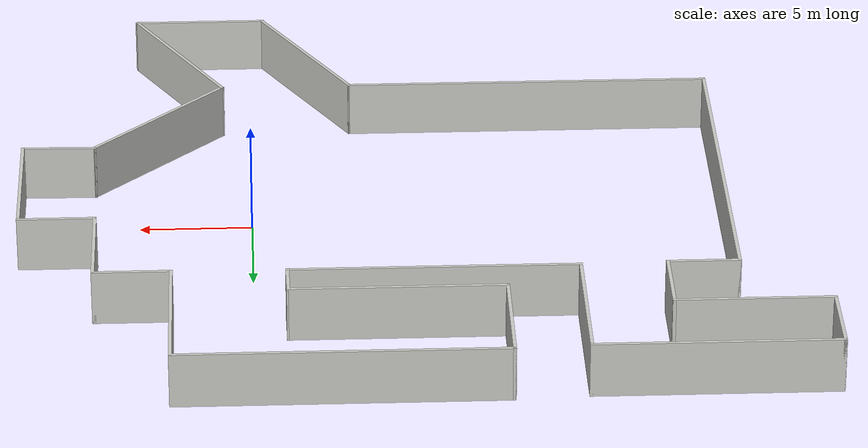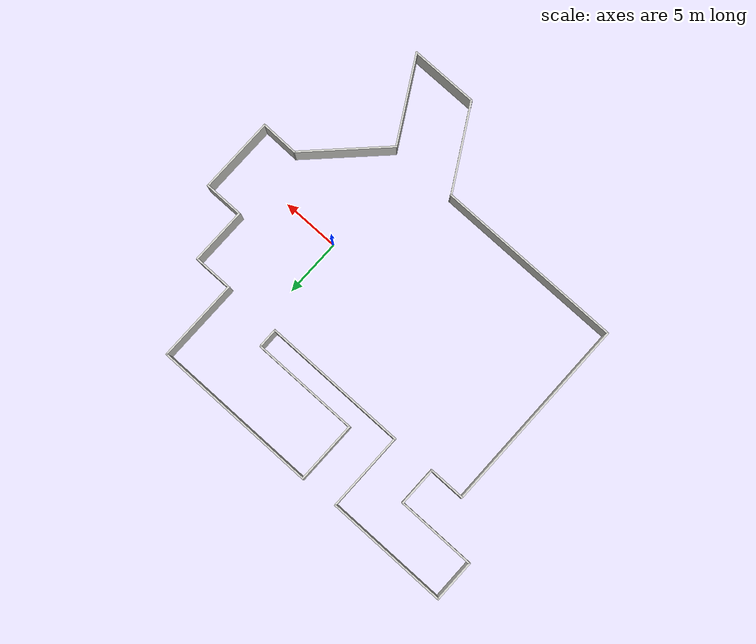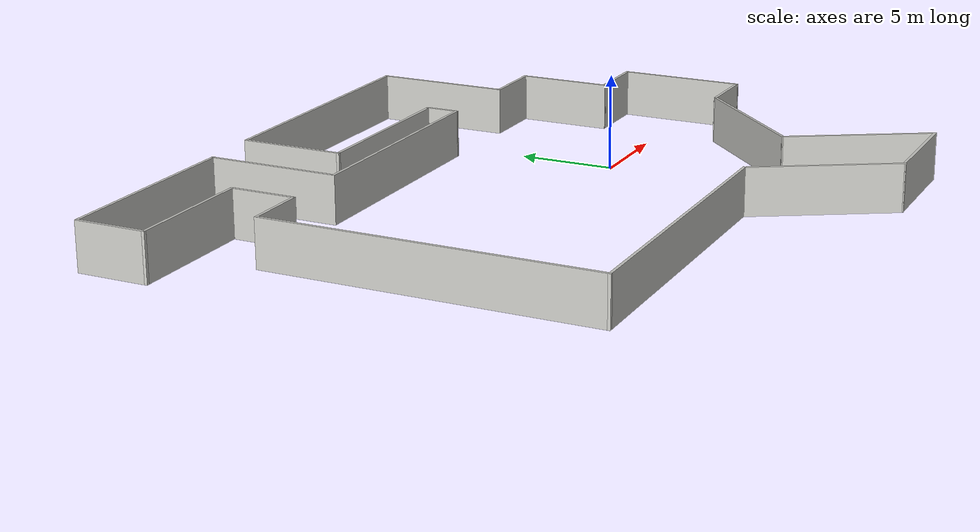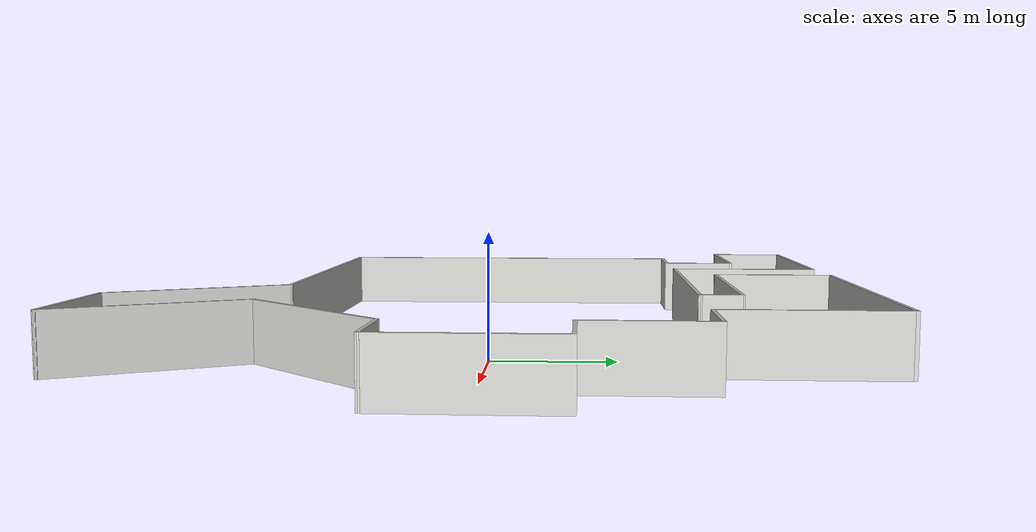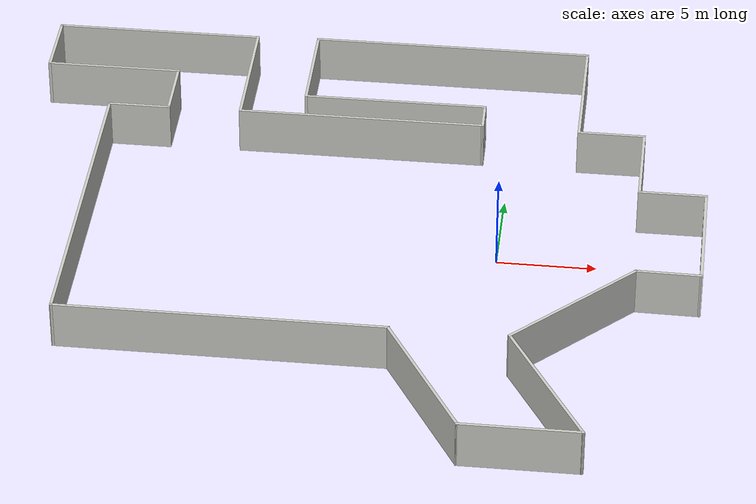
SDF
<?xml version='1.0'?>
<sdf version='1.7'>
  <model name='real_room'>
    <pose>-7.21563 -0.226481 0 0 -0 0</pose>
    <link name='Wall_38'>
      <collision name='Wall_38_Collision'>
        <geometry>
          <box>
            <size>9.5 0.15 2.5</size>
          </box>
        </geometry>
        <pose>0 0 1.25 0 -0 0</pose>
      </collision>
      <visual name='Wall_38_Visual'>
        <pose>0 0 1.25 0 -0 0</pose>
        <geometry>
          <box>
            <size>9.5 0.15 2.5</size>
          </box>
        </geometry>
        <material>
          <script>
            <uri>file://media/materials/scripts/gazebo.material</uri>
            <name>Gazebo/CeilingTiled</name>
          </script>
          <ambient>1 1 1 1</ambient>
        </material>
        <meta>
          <layer>0</layer>
        </meta>
      </visual>
      <pose>1.06462 10.1765 0 0 -0 3.14159</pose>
    </link>
    <link name='Wall_39'>
      <collision name='Wall_39_Collision'>
        <geometry>
          <box>
            <size>5.5 0.15 2.5</size>
          </box>
        </geometry>
        <pose>0 0 1.25 0 -0 0</pose>
      </collision>
      <visual name='Wall_39_Visual'>
        <pose>0 0 1.25 0 -0 0</pose>
        <geometry>
          <box>
            <size>5.5 0.15 2.5</size>
          </box>
        </geometry>
        <material>
          <script>
            <uri>file://media/materials/scripts/gazebo.material</uri>
            <name>Gazebo/CeilingTiled</name>
          </script>
          <ambient>1 1 1 1</ambient>
        </material>
        <meta>
          <layer>0</layer>
        </meta>
      </visual>
      <pose>-3.61037 12.8515 0 0 -0 1.5708</pose>
    </link>
    <link name='Wall_40'>
      <collision name='Wall_40_Collision'>
        <geometry>
          <box>
            <size>14.5 0.15 2.5</size>
          </box>
        </geometry>
        <pose>0 0 1.25 0 -0 0</pose>
      </collision>
      <visual name='Wall_40_Visual'>
        <pose>0 0 1.25 0 -0 0</pose>
        <geometry>
          <box>
            <size>14.5 0.15 2.5</size>
          </box>
        </geometry>
        <material>
          <script>
            <uri>file://media/materials/scripts/gazebo.material</uri>
            <name>Gazebo/CeilingTiled</name>
          </script>
          <ambient>1 1 1 1</ambient>
        </material>
        <meta>
          <layer>0</layer>
        </meta>
      </visual>
      <pose>3.56462 15.5265 0 0 -0 0</pose>
    </link>
    <link name='Wall_41'>
      <collision name='Wall_41_Collision'>
        <geometry>
          <box>
            <size>7.25 0.15 2.5</size>
          </box>
        </geometry>
        <pose>0 0 1.25 0 -0 0</pose>
      </collision>
      <visual name='Wall_41_Visual'>
        <pose>0 0 1.25 0 -0 0</pose>
        <geometry>
          <box>
            <size>7.25 0.15 2.5</size>
          </box>
        </geometry>
        <material>
          <script>
            <uri>file://media/materials/scripts/gazebo.material</uri>
            <name>Gazebo/CeilingTiled</name>
          </script>
          <ambient>1 1 1 1</ambient>
        </material>
        <meta>
          <layer>0</layer>
        </meta>
      </visual>
      <pose>10.7396 11.9765 0 0 -0 -1.5708</pose>
    </link>
    <link name='Wall_48'>
      <collision name='Wall_48_Collision'>
        <geometry>
          <box>
            <size>3.5 0.15 2.5</size>
          </box>
        </geometry>
        <pose>0 0 1.25 0 -0 0</pose>
      </collision>
      <visual name='Wall_48_Visual'>
        <pose>0 0 1.25 0 -0 0</pose>
        <geometry>
          <box>
            <size>3.5 0.15 2.5</size>
          </box>
        </geometry>
        <material>
          <script>
            <uri>file://media/materials/scripts/gazebo.material</uri>
            <name>Gazebo/CeilingTiled</name>
          </script>
          <ambient>1 1 1 1</ambient>
        </material>
        <meta>
          <layer>0</layer>
        </meta>
      </visual>
      <pose>12.4146 8.42648 0 0 -0 0</pose>
    </link>
    <link name='Wall_58'>
      <collision name='Wall_58_Collision'>
        <geometry>
          <box>
            <size>17.25 0.15 2.5</size>
          </box>
        </geometry>
        <pose>0 0 1.25 0 -0 0</pose>
      </collision>
      <visual name='Wall_58_Visual'>
        <pose>0 0 1.25 0 -0 0</pose>
        <geometry>
          <box>
            <size>17.25 0.15 2.5</size>
          </box>
        </geometry>
        <material>
          <script>
            <uri>file://media/materials/scripts/gazebo.material</uri>
            <name>Gazebo/CeilingTiled</name>
          </script>
          <ambient>1 1 1 1</ambient>
        </material>
        <meta>
          <layer>0</layer>
        </meta>
      </visual>
      <pose>-13.6908 -0.15073 0 0 -0 1.5708</pose>
    </link>
    <link name='Wall_64'>
      <collision name='Wall_64_Collision'>
        <geometry>
          <box>
            <size>5 0.15 2.5</size>
          </box>
        </geometry>
        <pose>0 0 1.25 0 -0 0</pose>
      </collision>
      <visual name='Wall_64_Visual'>
        <pose>0 0 1.25 0 -0 0</pose>
        <geometry>
          <box>
            <size>5 0.15 2.5</size>
          </box>
        </geometry>
        <material>
          <script>
            <uri>file://media/materials/scripts/gazebo.material</uri>
            <name>Gazebo/CeilingTiled</name>
          </script>
          <ambient>1 1 1 1</ambient>
        </material>
        <meta>
          <layer>0</layer>
        </meta>
      </visual>
      <pose>14.0896 6.00148 0 0 -0 -1.5708</pose>
    </link>
    <link name='Wall_65'>
      <collision name='Wall_65_Collision'>
        <geometry>
          <box>
            <size>3.5 0.15 2.5</size>
          </box>
        </geometry>
        <pose>0 0 1.25 0 -0 0</pose>
      </collision>
      <visual name='Wall_65_Visual'>
        <pose>0 0 1.25 0 -0 0</pose>
        <geometry>
          <box>
            <size>3.5 0.15 2.5</size>
          </box>
        </geometry>
        <material>
          <script>
            <uri>file://media/materials/scripts/gazebo.material</uri>
            <name>Gazebo/CeilingTiled</name>
          </script>
          <ambient>1 1 1 1</ambient>
        </material>
        <meta>
          <layer>0</layer>
        </meta>
      </visual>
      <pose>15.7646 3.57648 0 0 -0 0</pose>
    </link>
    <link name='Wall_66'>
      <collision name='Wall_66_Collision'>
        <geometry>
          <box>
            <size>6.75 0.15 2.5</size>
          </box>
        </geometry>
        <pose>0 0 1.25 0 -0 0</pose>
      </collision>
      <visual name='Wall_66_Visual'>
        <pose>0 0 1.25 0 -0 0</pose>
        <geometry>
          <box>
            <size>6.75 0.15 2.5</size>
          </box>
        </geometry>
        <material>
          <script>
            <uri>file://media/materials/scripts/gazebo.material</uri>
            <name>Gazebo/CeilingTiled</name>
          </script>
          <ambient>1 1 1 1</ambient>
        </material>
        <meta>
          <layer>0</layer>
        </meta>
      </visual>
      <pose>17.4396 0.276481 0 0 -0 -1.5708</pose>
    </link>
    <link name='Wall_74'>
      <collision name='Wall_74_Collision'>
        <geometry>
          <box>
            <size>3.25 0.15 2.5</size>
          </box>
        </geometry>
        <pose>0 0 1.25 0 -0 0</pose>
      </collision>
      <visual name='Wall_74_Visual'>
        <pose>0 0 1.25 0 -0 0</pose>
        <geometry>
          <box>
            <size>3.25 0.15 2.5</size>
          </box>
        </geometry>
        <material>
          <script>
            <uri>file://media/materials/scripts/gazebo.material</uri>
            <name>Gazebo/CeilingTiled</name>
          </script>
          <ambient>1 1 1 1</ambient>
        </material>
        <meta>
          <layer>0</layer>
        </meta>
      </visual>
      <pose>-12.1408 8.39927 0 0 -0 0</pose>
    </link>
    <link name='Wall_76'>
      <collision name='Wall_76_Collision'>
        <geometry>
          <box>
            <size>3.5 0.15 2.5</size>
          </box>
        </geometry>
        <pose>0 0 1.25 0 -0 0</pose>
      </collision>
      <visual name='Wall_76_Visual'>
        <pose>0 0 1.25 0 -0 0</pose>
        <geometry>
          <box>
            <size>3.5 0.15 2.5</size>
          </box>
        </geometry>
        <material>
          <script>
            <uri>file://media/materials/scripts/gazebo.material</uri>
            <name>Gazebo/CeilingTiled</name>
          </script>
          <ambient>1 1 1 1</ambient>
        </material>
        <meta>
          <layer>0</layer>
        </meta>
      </visual>
      <pose>-10.5908 10.0743 0 0 -0 1.5708</pose>
    </link>
    <link name='Wall_77'>
      <collision name='Wall_77_Collision'>
        <geometry>
          <box>
            <size>7 0.15 2.5</size>
          </box>
        </geometry>
        <pose>0 0 1.25 0 -0 0</pose>
      </collision>
      <visual name='Wall_77_Visual'>
        <pose>0 0 1.25 0 -0 0</pose>
        <geometry>
          <box>
            <size>7 0.15 2.5</size>
          </box>
        </geometry>
        <material>
          <script>
            <uri>file://media/materials/scripts/gazebo.material</uri>
            <name>Gazebo/CeilingTiled</name>
          </script>
          <ambient>1 1 1 1</ambient>
        </material>
        <meta>
          <layer>0</layer>
        </meta>
      </visual>
      <pose>-14.0158 11.7493 0 0 -0 3.14159</pose>
    </link>
    <link name='Wall_78'>
      <collision name='Wall_78_Collision'>
        <geometry>
          <box>
            <size>3.75 0.15 2.5</size>
          </box>
        </geometry>
        <pose>0 0 1.25 0 -0 0</pose>
      </collision>
      <visual name='Wall_78_Visual'>
        <pose>0 0 1.25 0 -0 0</pose>
        <geometry>
          <box>
            <size>3.75 0.15 2.5</size>
          </box>
        </geometry>
        <material>
          <script>
            <uri>file://media/materials/scripts/gazebo.material</uri>
            <name>Gazebo/CeilingTiled</name>
          </script>
          <ambient>1 1 1 1</ambient>
        </material>
        <meta>
          <layer>0</layer>
        </meta>
      </visual>
      <pose>-17.4408 13.5493 0 0 -0 1.5708</pose>
    </link>
    <link name='Wall_79'>
      <collision name='Wall_79_Collision'>
        <geometry>
          <box>
            <size>10.75 0.15 2.5</size>
          </box>
        </geometry>
        <pose>0 0 1.25 0 -0 0</pose>
      </collision>
      <visual name='Wall_79_Visual'>
        <pose>0 0 1.25 0 -0 0</pose>
        <geometry>
          <box>
            <size>10.75 0.15 2.5</size>
          </box>
        </geometry>
        <material>
          <script>
            <uri>file://media/materials/scripts/gazebo.material</uri>
            <name>Gazebo/CeilingTiled</name>
          </script>
          <ambient>1 1 1 1</ambient>
        </material>
        <meta>
          <layer>0</layer>
        </meta>
      </visual>
      <pose>-12.1408 15.3493 0 0 -0 0</pose>
    </link>
    <link name='Wall_80'>
      <collision name='Wall_80_Collision'>
        <geometry>
          <box>
            <size>7 0.15 2.5</size>
          </box>
        </geometry>
        <pose>0 0 1.25 0 -0 0</pose>
      </collision>
      <visual name='Wall_80_Visual'>
        <pose>0 0 1.25 0 -0 0</pose>
        <geometry>
          <box>
            <size>7 0.15 2.5</size>
          </box>
        </geometry>
        <material>
          <script>
            <uri>file://media/materials/scripts/gazebo.material</uri>
            <name>Gazebo/CeilingTiled</name>
          </script>
          <ambient>1 1 1 1</ambient>
        </material>
        <meta>
          <layer>0</layer>
        </meta>
      </visual>
      <pose>-6.84079 11.9243 0 0 -0 -1.5708</pose>
    </link>
    <link name='Wall_83'>
      <collision name='Wall_83_Collision'>
        <geometry>
          <box>
            <size>12.75 0.15 2.5</size>
          </box>
        </geometry>
        <pose>0 0 1.25 0 -0 0</pose>
      </collision>
      <visual name='Wall_83_Visual'>
        <pose>0 0 1.25 0 -0 0</pose>
        <geometry>
          <box>
            <size>12.75 0.15 2.5</size>
          </box>
        </geometry>
        <material>
          <script>
            <uri>file://media/materials/scripts/gazebo.material</uri>
            <name>Gazebo/CeilingTiled</name>
          </script>
          <ambient>1 1 1 1</ambient>
        </material>
        <meta>
          <layer>0</layer>
        </meta>
      </visual>
      <pose>-0.540794 8.49927 0 0 -0 0</pose>
    </link>
    <link name='Wall_85'>
      <collision name='Wall_85_Collision'>
        <geometry>
          <box>
            <size>1.82733 0.15 2.5</size>
          </box>
        </geometry>
        <pose>0 0 1.25 0 -0 0</pose>
      </collision>
      <visual name='Wall_85_Visual'>
        <pose>0 0 1.25 0 -0 0</pose>
        <geometry>
          <box>
            <size>1.82733 0.15 2.5</size>
          </box>
        </geometry>
        <material>
          <script>
            <uri>file://media/materials/scripts/gazebo.material</uri>
            <name>Gazebo/CeilingTiled</name>
          </script>
          <ambient>1 1 1 1</ambient>
        </material>
        <meta>
          <layer>0</layer>
        </meta>
      </visual>
      <pose>5.74942 9.33788 0 0 -0 -1.55912</pose>
    </link>
    <link name='Wall_87'>
      <collision name='Wall_87_Collision'>
        <geometry>
          <box>
            <size>16.5 0.15 2.5</size>
          </box>
        </geometry>
        <pose>0 0 1.25 0 -0 0</pose>
      </collision>
      <visual name='Wall_87_Visual'>
        <pose>0 0 1.25 0 -0 0</pose>
        <geometry>
          <box>
            <size>16.5 0.15 2.5</size>
          </box>
        </geometry>
        <material>
          <script>
            <uri>file://media/materials/scripts/gazebo.material</uri>
            <name>Gazebo/CeilingTiled</name>
          </script>
          <ambient>1 1 1 1</ambient>
        </material>
        <meta>
          <layer>0</layer>
        </meta>
      </visual>
      <pose>-5.51579 -8.70073 0 0 -0 0</pose>
    </link>
    <link name='Wall_88'>
      <collision name='Wall_88_Collision'>
        <geometry>
          <box>
            <size>8 0.15 2.5</size>
          </box>
        </geometry>
        <pose>0 0 1.25 0 -0 0</pose>
      </collision>
      <visual name='Wall_88_Visual'>
        <pose>0 0 1.25 0 -0 0</pose>
        <geometry>
          <box>
            <size>8 0.15 2.5</size>
          </box>
        </geometry>
        <material>
          <script>
            <uri>file://media/materials/scripts/gazebo.material</uri>
            <name>Gazebo/CeilingTiled</name>
          </script>
          <ambient>1 1 1 1</ambient>
        </material>
        <meta>
          <layer>0</layer>
        </meta>
      </visual>
      <pose>4.62171 -12.0999 0 0 -0 -1.0472</pose>
    </link>
    <link name='Wall_89'>
      <collision name='Wall_89_Collision'>
        <geometry>
          <box>
            <size>6 0.15 2.5</size>
          </box>
        </geometry>
        <pose>0 0 1.25 0 -0 0</pose>
      </collision>
      <visual name='Wall_89_Visual'>
        <pose>0 0 1.25 0 -0 0</pose>
        <geometry>
          <box>
            <size>6 0.15 2.5</size>
          </box>
        </geometry>
        <material>
          <script>
            <uri>file://media/materials/scripts/gazebo.material</uri>
            <name>Gazebo/CeilingTiled</name>
          </script>
          <ambient>1 1 1 1</ambient>
        </material>
        <meta>
          <layer>0</layer>
        </meta>
      </visual>
      <pose>9.50921 -15.499 0 0 -0 0</pose>
    </link>
    <link name='Wall_90'>
      <collision name='Wall_90_Collision'>
        <geometry>
          <box>
            <size>8 0.15 2.5</size>
          </box>
        </geometry>
        <pose>0 0 1.25 0 -0 0</pose>
      </collision>
      <visual name='Wall_90_Visual'>
        <pose>0 0 1.25 0 -0 0</pose>
        <geometry>
          <box>
            <size>8 0.15 2.5</size>
          </box>
        </geometry>
        <material>
          <script>
            <uri>file://media/materials/scripts/gazebo.material</uri>
            <name>Gazebo/CeilingTiled</name>
          </script>
          <ambient>1 1 1 1</ambient>
        </material>
        <meta>
          <layer>0</layer>
        </meta>
      </visual>
      <pose>10.4717 -12.0999 0 0 -0 2.0944</pose>
    </link>
    <link name='Wall_91'>
      <collision name='Wall_91_Collision'>
        <geometry>
          <box>
            <size>8.25 0.15 2.5</size>
          </box>
        </geometry>
        <pose>0 0 1.25 0 -0 0</pose>
      </collision>
      <visual name='Wall_91_Visual'>
        <pose>0 0 1.25 0 -0 0</pose>
        <geometry>
          <box>
            <size>8.25 0.15 2.5</size>
          </box>
        </geometry>
        <material>
          <script>
            <uri>file://media/materials/scripts/gazebo.material</uri>
            <name>Gazebo/CeilingTiled</name>
          </script>
          <ambient>1 1 1 1</ambient>
        </material>
        <meta>
          <layer>0</layer>
        </meta>
      </visual>
      <pose>11.373 -5.83695 0 0 -0 0.785398</pose>
    </link>
    <link name='Wall_93'>
      <collision name='Wall_93_Collision'>
        <geometry>
          <box>
            <size>3.35325 0.15 2.5</size>
          </box>
        </geometry>
        <pose>0 0 1.25 0 -0 0</pose>
      </collision>
      <visual name='Wall_93_Visual'>
        <pose>0 0 1.25 0 -0 0</pose>
        <geometry>
          <box>
            <size>3.35325 0.15 2.5</size>
          </box>
        </geometry>
        <material>
          <script>
            <uri>file://media/materials/scripts/gazebo.material</uri>
            <name>Gazebo/CeilingTiled</name>
          </script>
          <ambient>1 1 1 1</ambient>
        </material>
        <meta>
          <layer>0</layer>
        </meta>
      </visual>
      <pose>15.8382 -2.99834 0 0 -0 3.12587</pose>
    </link>
    <static>1</static>
  </model>
</sdf>
